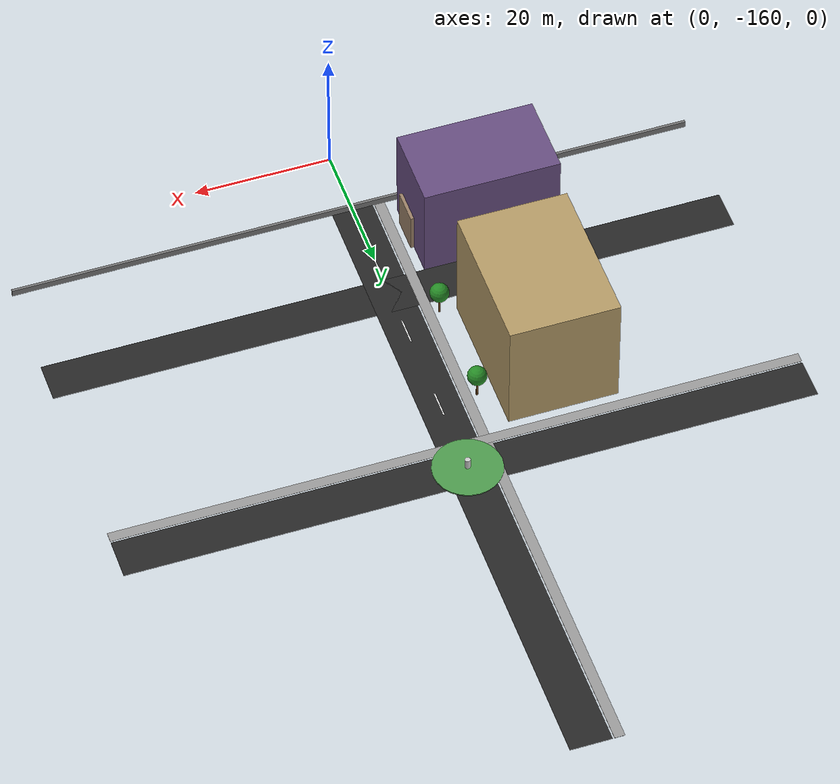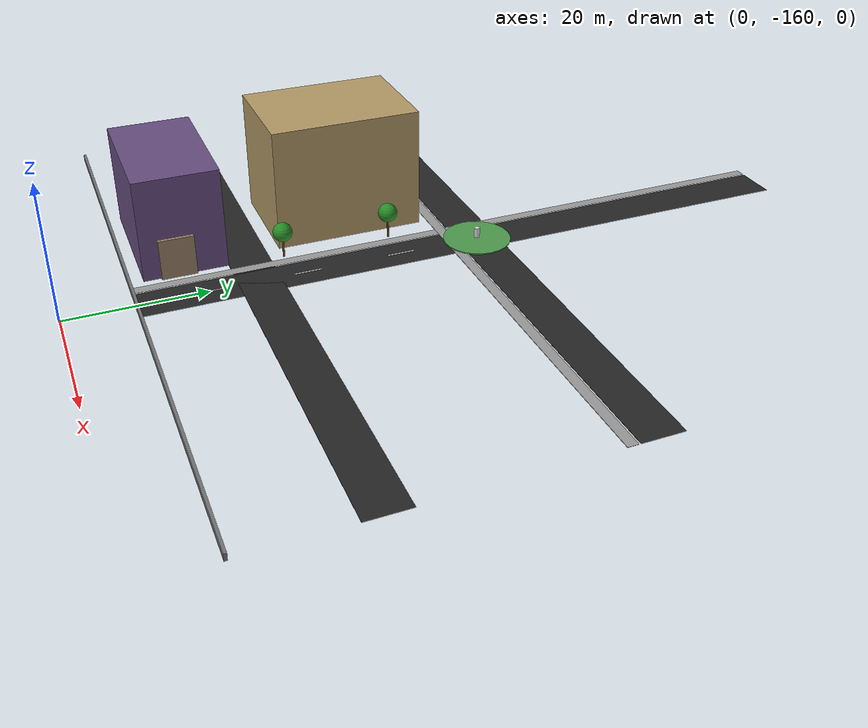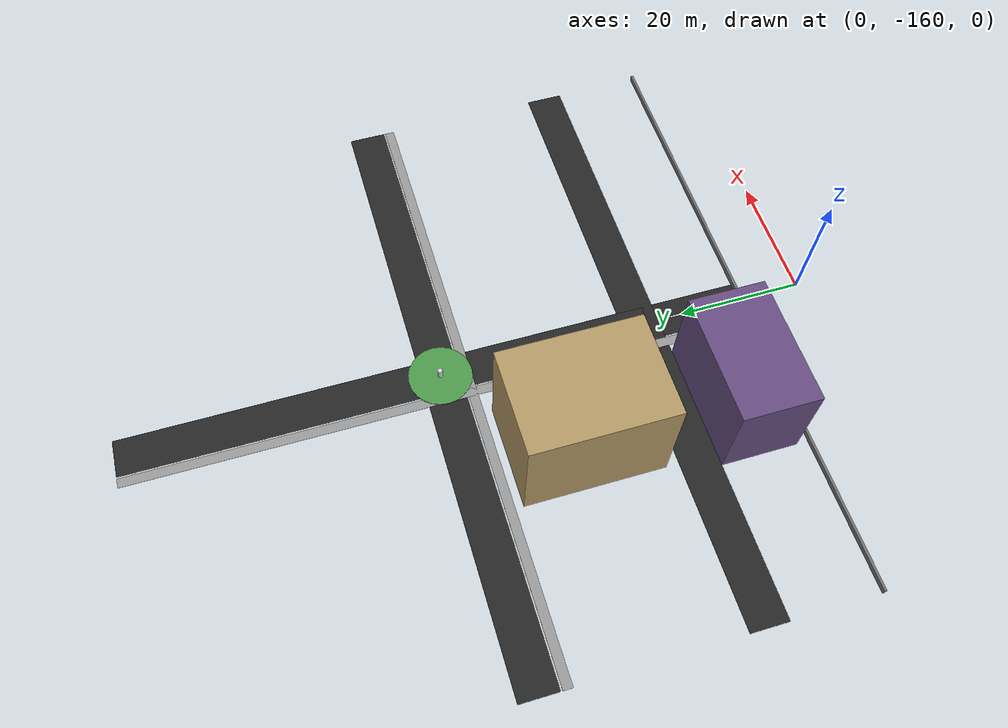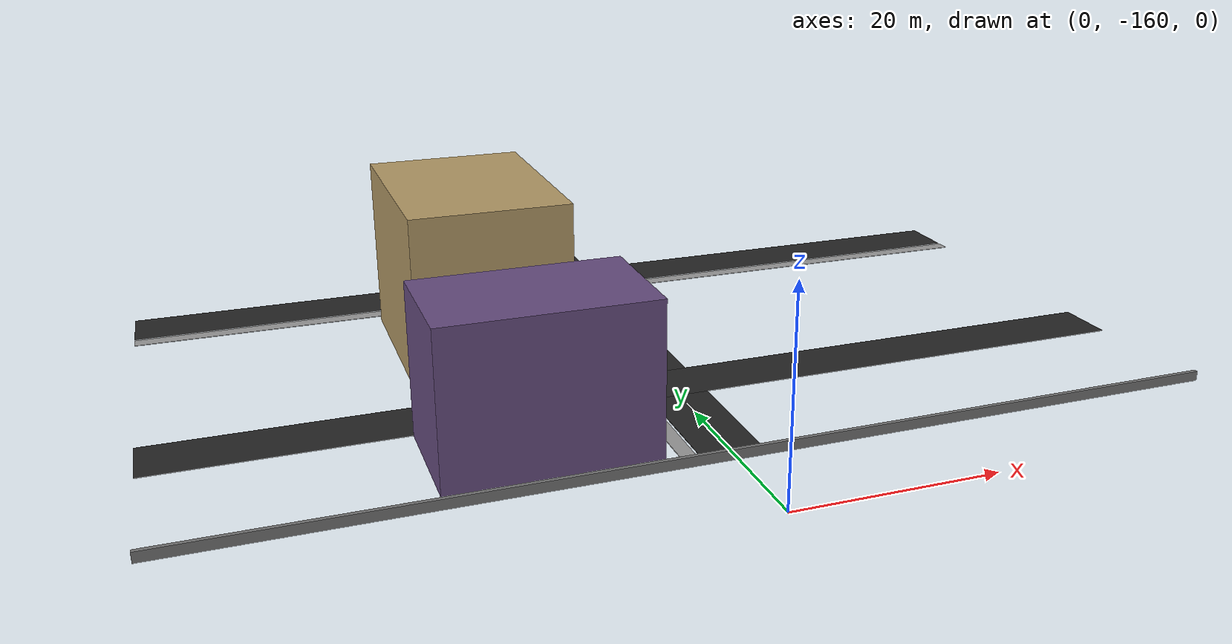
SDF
<sdf version="1.9">
 <world name="combined_drone_world">
  <model name="city_road_ns_centre">
   <static>true</static>
   <pose>0 -100 0.02 0 0 0</pose>
   <link name="link">
    <collision name="col"><geometry><box><size>6 100 0.04</size></box></geometry></collision>
    <visual name="vis">
     <geometry><box><size>6 100 0.04</size></box></geometry>
     <material><ambient>0.15 0.15 0.15 1</ambient><diffuse>0.15 0.15 0.15 1</diffuse></material>
    </visual>
   </link>
  </model>
  <model name="city_road_ew_centre">
   <static>true</static>
   <pose>0 -100 0.02 0 0 0</pose>
   <link name="link">
    <collision name="col"><geometry><box><size>100 6 0.04</size></box></geometry></collision>
    <visual name="vis">
     <geometry><box><size>100 6 0.04</size></box></geometry>
     <material><ambient>0.15 0.15 0.15 1</ambient><diffuse>0.15 0.15 0.15 1</diffuse></material>
    </visual>
   </link>
  </model>
  <model name="city_road_ew_south">
   <static>true</static>
   <pose>0 -133 0.02 0 0 0</pose>
   <link name="link">
    <collision name="col"><geometry><box><size>100 6 0.04</size></box></geometry></collision>
    <visual name="vis">
     <geometry><box><size>100 6 0.04</size></box></geometry>
     <material><ambient>0.15 0.15 0.15 1</ambient><diffuse>0.15 0.15 0.15 1</diffuse></material>
    </visual>
   </link>
  </model>
  <model name="dash_ns_c_4">
   <static>true</static>
   <pose>0 -112 0.045 0 0 0</pose>
   <link name="link">
    <visual name="vis">
     <geometry><box><size>0.2 4 0.01</size></box></geometry>
     <material><ambient>1 1 1 1</ambient><diffuse>1 1 1 1</diffuse></material>
    </visual>
   </link>
  </model>
  <model name="dash_ns_c_5">
   <static>true</static>
   <pose>0 -126 0.045 0 0 0</pose>
   <link name="link">
    <visual name="vis">
     <geometry><box><size>0.2 4 0.01</size></box></geometry>
     <material><ambient>1 1 1 1</ambient><diffuse>1 1 1 1</diffuse></material>
    </visual>
   </link>
  </model>
  <model name="dash_ns_c_6">
   <static>true</static>
   <pose>0 -140 0.045 0 0 0</pose>
   <link name="link">
    <visual name="vis">
     <geometry><box><size>0.2 4 0.01</size></box></geometry>
     <material><ambient>1 1 1 1</ambient><diffuse>1 1 1 1</diffuse></material>
    </visual>
   </link>
  </model>
  <model name="swalk_ns_c_w">
   <static>true</static>
   <pose>-4 -100 0.03 0 0 0</pose>
   <link name="link">
    <collision name="col"><geometry><box><size>1.5 100 0.06</size></box></geometry></collision>
    <visual name="vis">
     <geometry><box><size>1.5 100 0.06</size></box></geometry>
     <material><ambient>0.6 0.6 0.6 1</ambient><diffuse>0.6 0.6 0.6 1</diffuse></material>
    </visual>
   </link>
  </model>
  <model name="swalk_ew_c_s">
   <static>true</static>
   <pose>0 -104 0.03 0 0 0</pose>
   <link name="link">
    <collision name="col"><geometry><box><size>100 1.5 0.06</size></box></geometry></collision>
    <visual name="vis">
     <geometry><box><size>100 1.5 0.06</size></box></geometry>
     <material><ambient>0.6 0.6 0.6 1</ambient><diffuse>0.6 0.6 0.6 1</diffuse></material>
    </visual>
   </link>
  </model>
  <model name="bld_r3_c2">
   <static>true</static>
   <pose>-16 -117 0 0 0 0</pose>
   <link name="link">
    <collision name="col"><geometry><box><size>16 22 18</size></box></geometry></collision>
    <visual name="vis">
     <pose>0 0 9 0 0 0</pose>
     <geometry><box><size>16 22 18</size></box></geometry>
     <material><ambient>0.7 0.6 0.4 1</ambient><diffuse>0.7 0.6 0.4 1</diffuse></material>
    </visual>
   </link>
  </model>
  <model name="bld_r4_c2">
   <static>true</static>
   <pose>-16 -142 0 0 0 0</pose>
   <link name="link">
    <collision name="col"><geometry><box><size>20 12 15</size></box></geometry></collision>
    <visual name="vis">
     <pose>0 0 7.5 0 0 0</pose>
     <geometry><box><size>20 12 15</size></box></geometry>
     <material><ambient>0.4 0.3 0.5 1</ambient><diffuse>0.4 0.3 0.5 1</diffuse></material>
    </visual>
   </link>
  </model>
  <model name="fill_g">
   <static>true</static>
   <pose>-8 -143 0 0 0 0</pose>
   <link name="link">
    <collision name="col"><geometry><box><size>5 5 6</size></box></geometry></collision>
    <visual name="vis">
     <pose>0 0 3 0 0 0</pose>
     <geometry><box><size>5 5 6</size></box></geometry>
     <material><ambient>0.6 0.5 0.4 1</ambient><diffuse>0.6 0.5 0.4 1</diffuse></material>
    </visual>
   </link>
  </model>
  <model name="plaza_island">
   <static>true</static>
   <pose>0 -100 0.1 0 0 0</pose>
   <link name="link">
    <collision name="col">
     <geometry><cylinder><radius>5</radius><length>0.2</length></cylinder></geometry>
    </collision>
    <visual name="vis">
     <geometry><cylinder><radius>5</radius><length>0.2</length></cylinder></geometry>
     <material><ambient>0.3 0.6 0.3 1</ambient><diffuse>0.3 0.6 0.3 1</diffuse></material>
    </visual>
   </link>
  </model>
  <model name="plaza_fountain">
   <static>true</static>
   <pose>0 -100 0.3 0 0 0</pose>
   <link name="link">
    <collision name="col">
     <geometry><cylinder><radius>0.4</radius><length>1.5</length></cylinder></geometry>
    </collision>
    <visual name="vis">
     <pose>0 0 0.75 0 0 0</pose>
     <geometry><cylinder><radius>0.4</radius><length>1.5</length></cylinder></geometry>
     <material><ambient>0.8 0.8 0.8 1</ambient><diffuse>0.8 0.8 0.8 1</diffuse></material>
    </visual>
   </link>
  </model>
  <model name="tree_st_7">
   <static>true</static>
   <pose>-5.5 -112 0 0 0 0</pose>
   <link name="link">
    <visual name="trunk">
     <pose>0 0 1.5 0 0 0</pose>
     <geometry><cylinder><radius>0.15</radius><length>3</length></cylinder></geometry>
     <material><ambient>0.4 0.25 0.1 1</ambient><diffuse>0.4 0.25 0.1 1</diffuse></material>
    </visual>
    <visual name="canopy">
     <pose>0 0 4 0 0 0</pose>
     <geometry><sphere><radius>1.4</radius></sphere></geometry>
     <material><ambient>0.15 0.55 0.15 1</ambient><diffuse>0.15 0.55 0.15 1</diffuse></material>
    </visual>
   </link>
  </model>
  <model name="tree_st_8">
   <static>true</static>
   <pose>-5.5 -128 0 0 0 0</pose>
   <link name="link">
    <visual name="trunk">
     <pose>0 0 1.5 0 0 0</pose>
     <geometry><cylinder><radius>0.15</radius><length>3</length></cylinder></geometry>
     <material><ambient>0.4 0.25 0.1 1</ambient><diffuse>0.4 0.25 0.1 1</diffuse></material>
    </visual>
    <visual name="canopy">
     <pose>0 0 4 0 0 0</pose>
     <geometry><sphere><radius>1.4</radius></sphere></geometry>
     <material><ambient>0.15 0.55 0.15 1</ambient><diffuse>0.15 0.55 0.15 1</diffuse></material>
    </visual>
   </link>
  </model>
  <model name="city_wall_south">
   <static>true</static>
   <pose>0 -150 0.5 0 0 0</pose>
   <link name="link">
    <collision name="col"><geometry><box><size>100 0.4 1</size></box></geometry></collision>
    <visual name="vis">
     <geometry><box><size>100 0.4 1</size></box></geometry>
     <material><ambient>0.45 0.45 0.45 1</ambient><diffuse>0.45 0.45 0.45 1</diffuse></material>
    </visual>
   </link>
  </model>
 </world>
</sdf>
